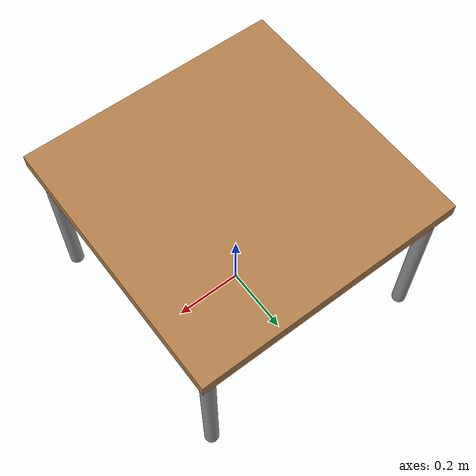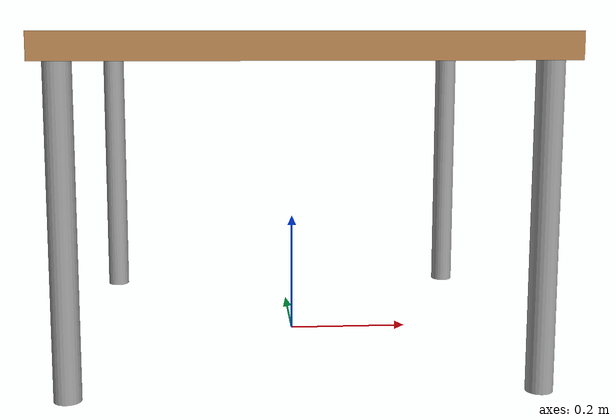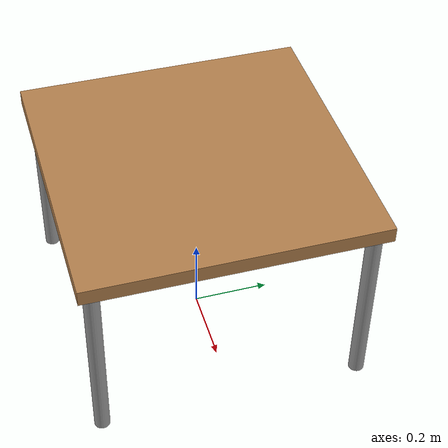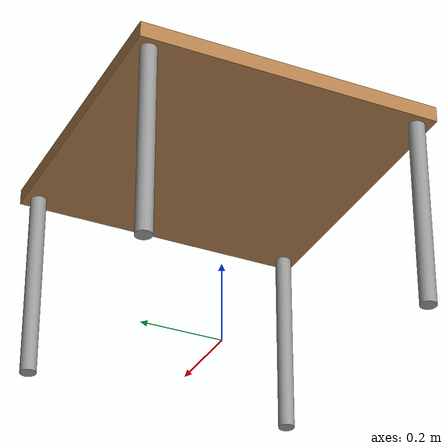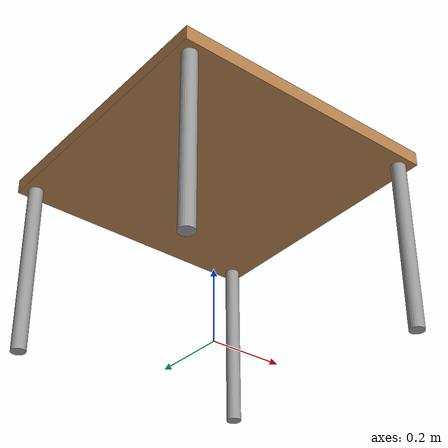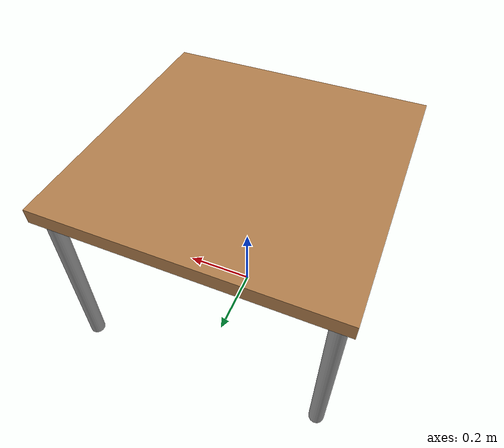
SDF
<?xml version="1.0"?>
<sdf version="1.5">
  <model name='reemc_table_low'>
      <static>1</static>
      <link name='link'>
        <collision name='surface'>
          <pose>0 0 0.5 0 -0 0</pose>
          <geometry>
            <box>
              <size>0.75 0.75 0.04</size>
            </box>
          </geometry>
          <surface>
            <bounce/>
            <friction>
              <ode/>
            </friction>
            <contact>
              <ode/>
            </contact>
          </surface>
        </collision>
        <visual name='visual1'>
          <pose>0 0 0.5 0 -0 0</pose>
          <geometry>
            <box>
              <size>0.75 0.75 0.04</size>
            </box>
          </geometry>
          <material>
            <script>
              <uri>file://media/materials/scripts/gazebo.material</uri>
              <name>Gazebo/Wood</name>
            </script>
          </material>
        </visual>
        <collision name='front_left_leg'>
          <pose>0.34 0.34 0.25 0 -0 0</pose>
          <geometry>
            <cylinder>
              <radius>0.02</radius>
              <length>0.5</length>
            </cylinder>
          </geometry>
          <surface>
            <bounce/>
            <friction>
              <ode/>
            </friction>
            <contact>
              <ode/>
            </contact>
          </surface>
        </collision>
        <visual name='front_left_leg'>
          <pose>0.34 0.34 0.25 0 -0 0</pose>
          <geometry>
            <cylinder>
              <radius>0.02</radius>
              <length>0.5</length>
            </cylinder>
          </geometry>
          <material>
            <script>
              <uri>file://media/materials/scripts/gazebo.material</uri>
              <name>Gazebo/Grey</name>
            </script>
          </material>
        </visual>
        <collision name='front_right_leg'>
          <pose>0.34 -0.34 0.25 0 -0 0</pose>
          <geometry>
            <cylinder>
              <radius>0.02</radius>
              <length>0.5</length>
            </cylinder>
          </geometry>
          <surface>
            <bounce/>
            <friction>
              <ode/>
            </friction>
            <contact>
              <ode/>
            </contact>
          </surface>
        </collision>
        <visual name='front_right_leg'>
          <pose>0.34 -0.34 0.25 0 -0 0</pose>
          <geometry>
            <cylinder>
              <radius>0.02</radius>
              <length>0.5</length>
            </cylinder>
          </geometry>
          <material>
            <script>
              <uri>file://media/materials/scripts/gazebo.material</uri>
              <name>Gazebo/Grey</name>
            </script>
          </material>
        </visual>
        <collision name='back_right_leg'>
          <pose>-0.34 -0.34 0.25 0 -0 0</pose>
          <geometry>
            <cylinder>
              <radius>0.02</radius>
              <length>0.5</length>
            </cylinder>
          </geometry>
          <surface>
            <bounce/>
            <friction>
              <ode/>
            </friction>
            <contact>
              <ode/>
            </contact>
          </surface>
        </collision>
        <visual name='back_right_leg'>
          <pose>-0.34 -0.34 0.25 0 -0 0</pose>
          <geometry>
            <cylinder>
              <radius>0.02</radius>
              <length>0.5</length>
            </cylinder>
          </geometry>
          <material>
            <script>
              <uri>file://media/materials/scripts/gazebo.material</uri>
              <name>Gazebo/Grey</name>
            </script>
          </material>
        </visual>
        <collision name='back_left_leg'>
          <pose>-0.34 0.34 0.25 0 -0 0</pose>
          <geometry>
            <cylinder>
              <radius>0.02</radius>
              <length>0.5</length>
            </cylinder>
          </geometry>
          <surface>
            <bounce/>
            <friction>
              <ode/>
            </friction>
            <contact>
              <ode/>
            </contact>
          </surface>
        </collision>
        <visual name='back_left_leg'>
          <pose>-0.34 0.34 0.25 0 -0 0</pose>
          <geometry>
            <cylinder>
              <radius>0.02</radius>
              <length>0.5</length>
            </cylinder>
          </geometry>
          <material>
            <script>
              <uri>file://media/materials/scripts/gazebo.material</uri>
              <name>Gazebo/Grey</name>
            </script>
          </material>
        </visual>
      </link>
    </model>
</sdf>
